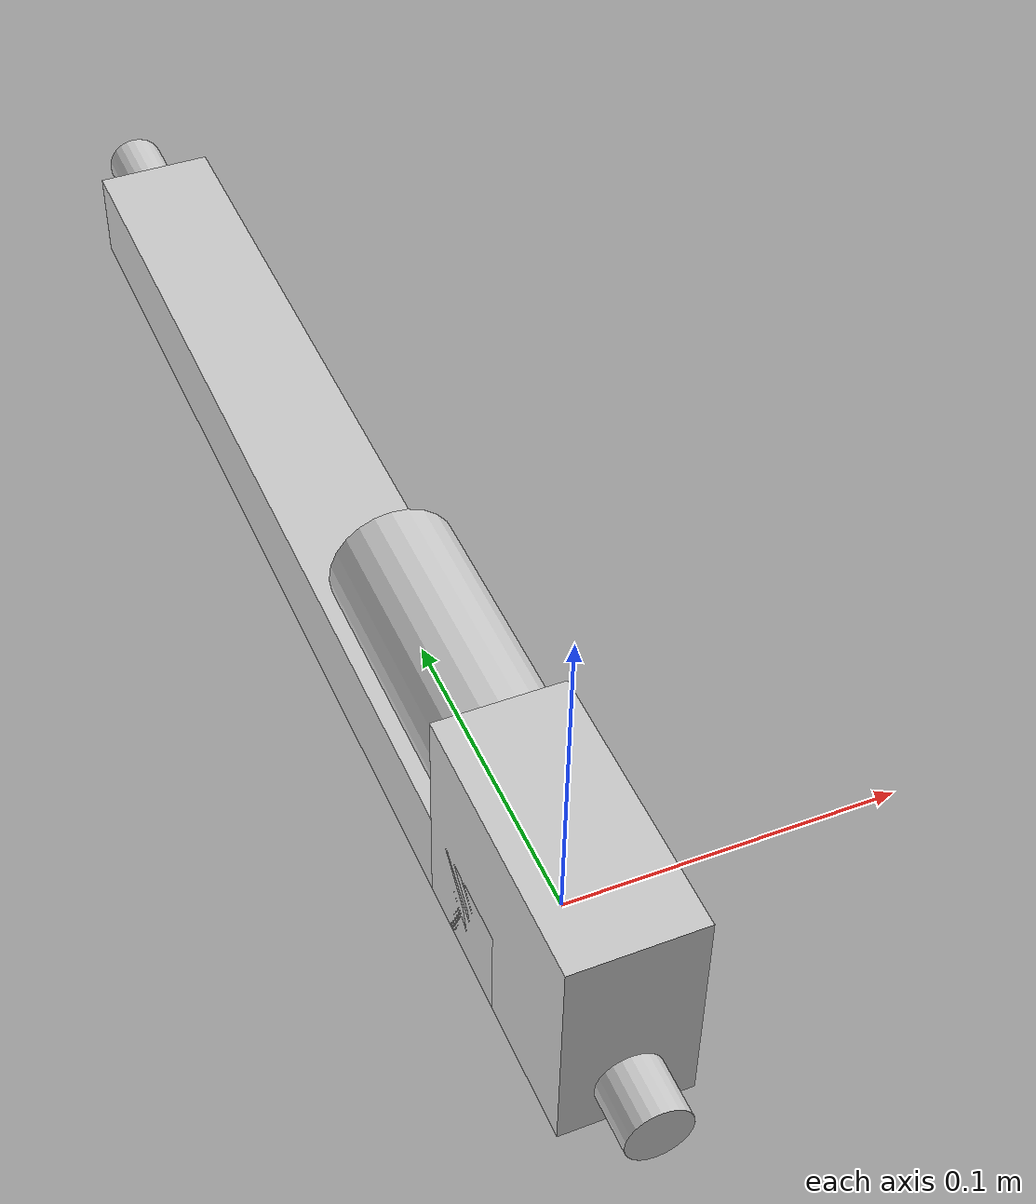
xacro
<?xml version="1.0"?>
<robot name="actuator" xmlns:xacro="http://www.ros.org/wiki/xacro">>

<xacro:property name="PI" value="3.1415926835897931"/>

<link name="base_link">
    <pose>0 0 0 0 0 0</pose>
    <inertial>
        <mass value='5'/>
        <origin rpy="0 0 0" xyz="0 0 0"/>
        <inertia ixx="0.04" ixy="0" ixz="0" iyy="0.1" iyz="0" izz="0.1"/>
    </inertial>
    <!-- body -->
    <collision>
     <geometry>
      <box size="0.04 0.087 0.071"/>
     </geometry>
    </collision>
    <visual>
     <origin rpy="0 0 0" xyz="0 0 0"/>
     <geometry>
      <box size="0.04 0.087 0.071"/>
     </geometry>
     <material name="grey">
        <color rgba="0.8 0.8 0.8 1.0"/>
     </material>
    </visual>

   <inertial>
    <mass value="125.0"/>
     <origin xyz="0 0 0"/>
       <inertia ixx="1.39" ixy="0.004" ixz="0" iyy="6.85" iyz="0" izz="6.12"/>
   </inertial>
   </link>

<!-- motor -->
   <joint name="motor" type="fixed">
    <origin xyz="0.0 0.083 0.0155" rpy="${PI/2} 0 0"/>
    <parent link="base_link"/>
    <child link="motor_link"/>
   </joint>

   <link name="motor_link">
   <inertial>
    <origin xyz="0 0 0" rpy="0 0 0"/>
    <mass value="1"/>
    <inertia ixx="100" ixy="0" ixz="0" iyy="100" iyz="0" izz="100"/>
   </inertial>
   <visual>
     <origin rpy="0 0 0" xyz="0 0 0"/>
     <geometry>
      <cylinder radius= "0.02" length= "0.08"/>
     </geometry>
     <material name="grey">
        <color rgba="0.8 0.8 0.8 1.0"/>
     </material>
    </visual>
    <collision>
     <origin rpy="0 0 0" xyz="0 0 0"/>
     <geometry>
      <cylinder radius= "0.02" length= "0.08"/>
     </geometry>
    </collision>
   </link>

<!-- fixed body -->
   <joint name="body" type="fixed">
    <origin xyz="0.0 0.1855 -0.02" rpy="${PI/2} 0 0"/>
    <parent link="base_link"/>
    <child link="body_link"/>
   </joint>

   <link name="body_link">
   <inertial>
    <origin xyz="0 0 0" rpy="0 0 0"/>
    <mass value="1"/>
    <inertia ixx="100" ixy="0" ixz="0" iyy="100" iyz="0" izz="100"/>
   </inertial>
   <visual>
     <origin rpy="0 0 0" xyz="0 0 0"/>
     <geometry>
      <box size="0.04 0.031 0.371"/>
     </geometry>
     <material name="grey">
        <color rgba="0.8 0.8 0.8 1.0"/>
     </material>
    </visual>
    <collision>
     <origin rpy="0 0 0" xyz="0 0 0"/>
     <geometry>
      <box size="0.04 0.031 0.371"/>
     </geometry>
    </collision>
   </link>

<!-- body holder -->
   <joint name="body_holder" type="fixed">
    <origin xyz="0.0 -0.0515 -0.02" rpy="${PI/2} 0 0"/>
    <parent link="base_link"/>
    <child link="body_holder_link"/>
   </joint>

   <link name="body_holder_link">
   <inertial>
    <origin xyz="0 0 0" rpy="0 0 0"/>
    <mass value="1"/>
    <inertia ixx="100" ixy="0" ixz="0" iyy="100" iyz="0" izz="100"/>
   </inertial>
   <visual>
     <origin rpy="0 0 0" xyz="0 0 0"/>
     <geometry>
      <cylinder radius="0.01" length="0.02"/>
     </geometry>
     <material name="grey">
        <color rgba="0.8 0.8 0.8 1.0"/>
     </material>
    </visual>
    <collision>
     <origin rpy="0 0 0" xyz="0 0 0"/>
     <geometry>
      <cylinder radius="0.01" length="0.02"/>
     </geometry>
    </collision>
   </link>

<!-- shaft -->
   <joint name="shaft" type="fixed">
    <origin xyz="0.0 0.0 -0.3015" rpy="0 0 0"/>
    <parent link="body_holder_link"/>
    <child link="shaft_link"/>
   </joint>

   <link name="shaft_link">
   <inertial>
    <origin xyz="0 0 0" rpy="0 0 0"/>
    <mass value="1"/>
    <inertia ixx="100" ixy="0" ixz="0" iyy="100" iyz="0" izz="100"/>
   </inertial>
   <visual>
     <origin rpy="0 0 0" xyz="0 0 0"/>
     <geometry>
      <cylinder radius="0.01" length="0.3"/>
     </geometry>
     <material name="grey">
        <color rgba="0.8 0.8 0.8 1.0"/>
     </material>
    </visual>
    <collision>
     <origin rpy="0 0 0" xyz="0 0 0"/>
     <geometry>
      <cylinder radius="0.01" length="0.3"/>
     </geometry>
    </collision>
   </link>

</robot>
